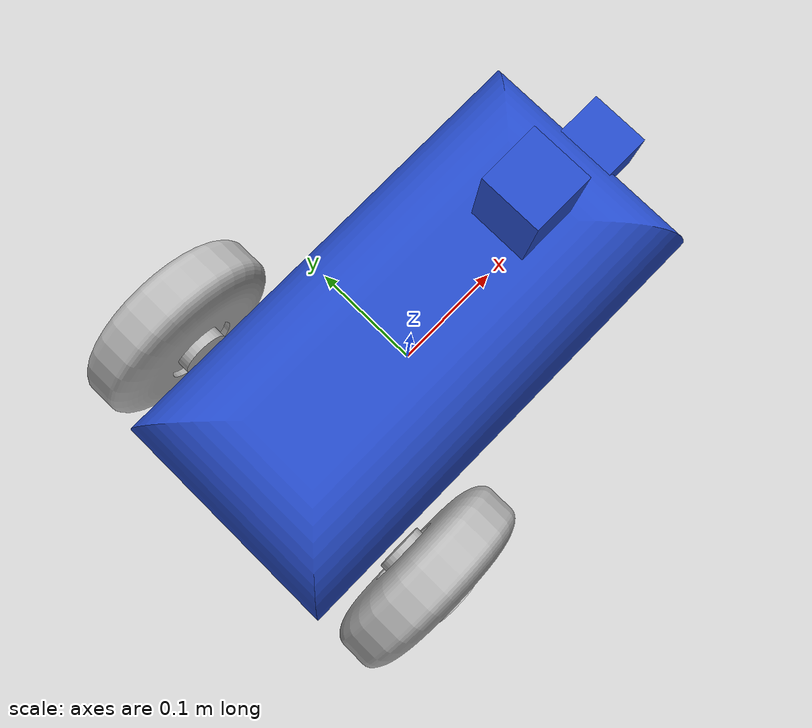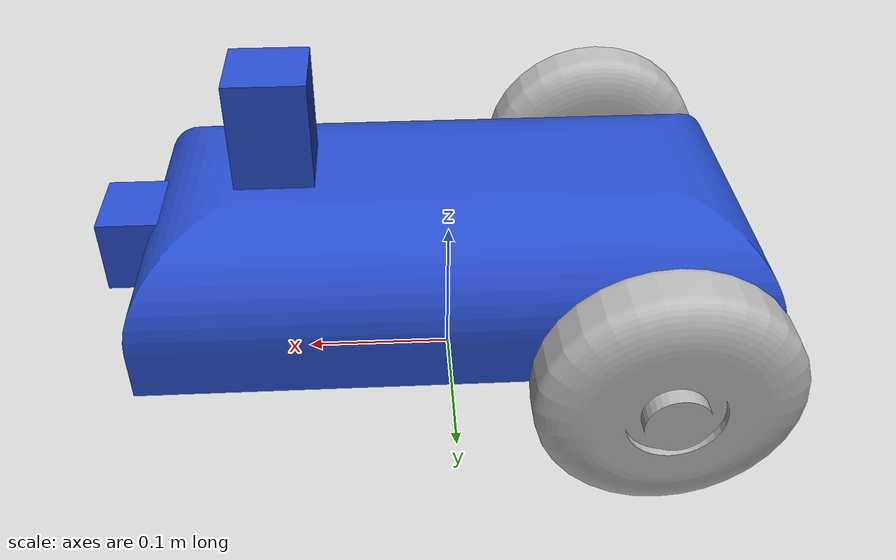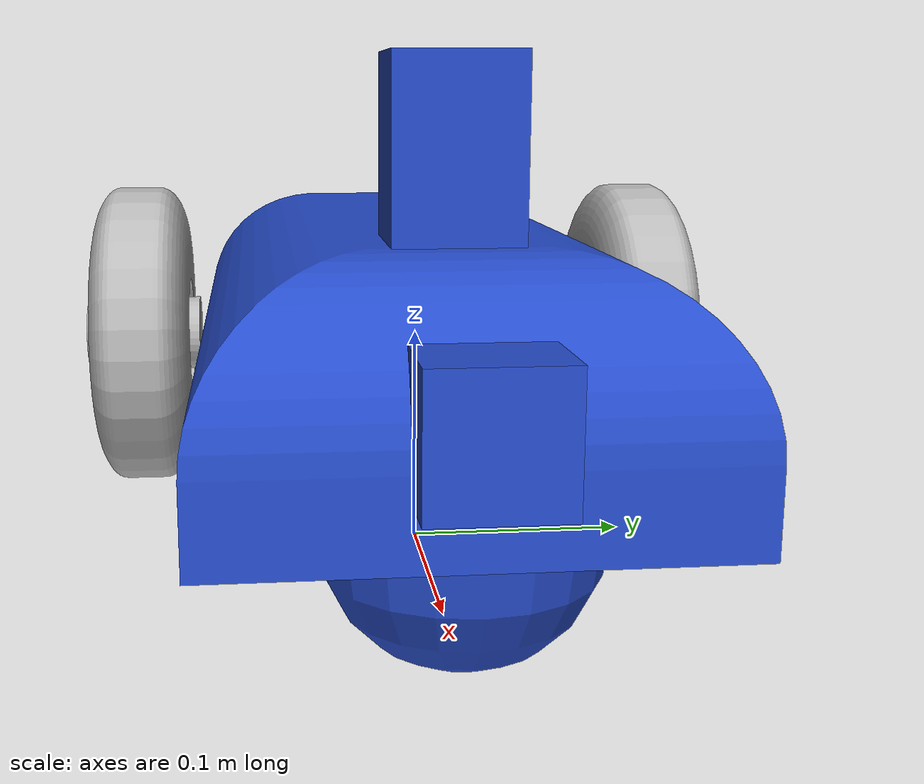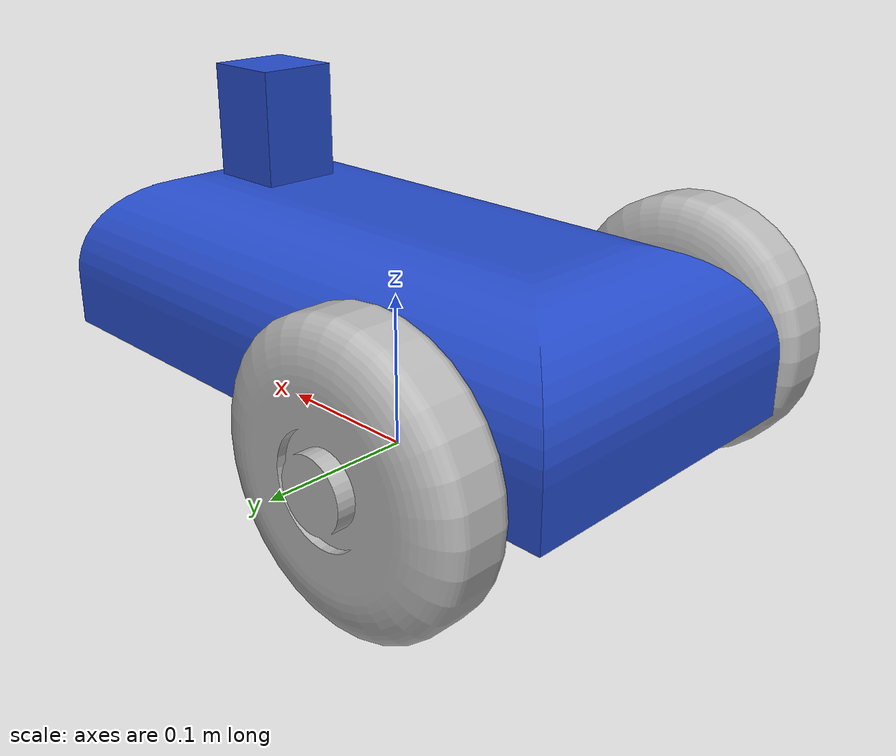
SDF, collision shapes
<sdf version='1.7'>
  <model name='diffbot'>
    <link name='footprint'>
      <inertial>
        <pose>0.043126 0 0.098751 0 -0 0</pose>
        <mass>0.80001</mass>
        <inertia>
          <ixx>0.00884183</ixx>
          <ixy>0</ixy>
          <ixz>0.000509314</ixz>
          <iyy>0.00745657</iyy>
          <iyz>0</iyz>
          <izz>0.0147377</izz>
        </inertia>
      </inertial>
      <collision name='footprint_fixed_joint_lump__base_collision'>
        <pose>0 0 0.105 0 -0 0</pose>
        <geometry>
          <mesh>
            <scale>1 1 1</scale>
            <uri>/home/mkhuthir/ws/install/bots/share/bots/meshes/diffbot/base.stl</uri>
          </mesh>
        </geometry>
        <surface>
          <contact>
            <ode/>
          </contact>
          <friction>
            <ode/>
          </friction>
        </surface>
      </collision>
      <collision name='footprint_fixed_joint_lump__camera_colision_collision_1'>
        <pose>0.2 0 0.105 0 -0 0</pose>
        <geometry>
          <box>
            <size>0.05 0.05 0.05</size>
          </box>
        </geometry>
      </collision>
      <collision name='footprint_fixed_joint_lump__front_caster_collision_2'>
        <pose>0.145 0 0.055 0 -0 0</pose>
        <geometry>
          <sphere>
            <radius>0.055</radius>
          </sphere>
        </geometry>
        <surface>
          <contact>
            <ode/>
          </contact>
          <friction>
            <ode/>
          </friction>
        </surface>
      </collision>
      <collision name='footprint_fixed_joint_lump__hokuyo_colision_collision_3'>
        <pose>0.11 0 0.1903 0 -0 0</pose>
        <geometry>
          <box>
            <size>0.05 0.05 0.0706</size>
          </box>
        </geometry>
      </collision>
      <visual name='footprint_fixed_joint_lump__base_visual'>
        <pose>0 0 0.105 0 -0 0</pose>
        <geometry>
          <mesh>
            <scale>1 1 1</scale>
            <uri>/home/mkhuthir/ws/install/bots/share/bots/meshes/diffbot/base.stl</uri>
          </mesh>
        </geometry>
        <material>
          <script>
            <name>Gazebo/Blue</name>
            <uri>file://media/materials/scripts/gazebo.material</uri>
          </script>
        </material>
      </visual>
      <visual name='footprint_fixed_joint_lump__camera_visual_visual_1'>
        <pose>0.2 0 0.105 0 -0 0</pose>
        <geometry>
          <box>
            <size>0.05 0.05 0.05</size>
          </box>
        </geometry>
        <material>
          <script>
            <name>Gazebo/Green</name>
            <uri>file://media/materials/scripts/gazebo.material</uri>
          </script>
        </material>
      </visual>
      <visual name='footprint_fixed_joint_lump__front_caster_visual_2'>
        <pose>0.145 0 0.055 0 -0 0</pose>
        <geometry>
          <sphere>
            <radius>0.055</radius>
          </sphere>
        </geometry>
        <material>
          <script>
            <name>Gazebo/White</name>
            <uri>file://media/materials/scripts/gazebo.material</uri>
          </script>
        </material>
      </visual>
      <visual name='footprint_fixed_joint_lump__hokuyo_visual_visual_3'>
        <pose>0.11 0 0.1903 0 -0 0</pose>
        <geometry>
          <mesh>
            <scale>1 1 1</scale>
            <uri>/home/mkhuthir/ws/install/bots/share/bots/meshes/diffbot/hokuyo.dae</uri>
          </mesh>
        </geometry>
      </visual>
      <sensor name='camera' type='camera'>
        <update_rate>30</update_rate>
        <camera name='head'>
          <horizontal_fov>1.39626</horizontal_fov>
          <image>
            <width>1280</width>
            <height>720</height>
            <format>R8G8B8</format>
          </image>
          <clip>
            <near>0.02</near>
            <far>300</far>
          </clip>
          <noise>
            <type>gaussian</type>
            <mean>0</mean>
            <stddev>0.007</stddev>
          </noise>
        </camera>
        <plugin name='camera_controller' filename='libgazebo_ros_camera.so'>
          <ros>
            <namespace>diffbot</namespace>
          </ros>
          <alwaysOn>1</alwaysOn>
          <updateRate>0.0</updateRate>
          <cameraName>camera</cameraName>
          <imageTopicName>image_raw</imageTopicName>
          <cameraInfoTopicName>camera_info</cameraInfoTopicName>
          <frameName>camera_optical</frameName>
          <hackBaseline>0.0</hackBaseline>
          <distortionK1>0.0</distortionK1>
          <distortionK2>0.0</distortionK2>
          <distortionK3>0.0</distortionK3>
          <distortionT1>0.0</distortionT1>
          <distortionT2>0.0</distortionT2>
          <CxPrime>0</CxPrime>
          <Cx>0.0</Cx>
          <Cy>0.0</Cy>
          <focalLength>0.0</focalLength>
        </plugin>
        <pose>0.2 0 0.105 0 -0 0</pose>
      </sensor>
      <sensor name='head_hokuyo_sensor' type='ray'>
        <plugin name='hokuyo' filename='libgazebo_ros_ray_sensor.so'>
          <ros>
            <namespace>diffbot</namespace>
          </ros>
          <output_type>sensor_msgs/LaserScan</output_type>
        </plugin>
        <update_rate>30</update_rate>
        <visualize>0</visualize>
        <ray>
          <scan>
            <horizontal>
              <samples>720</samples>
              <resolution>1</resolution>
              <min_angle>-3.14159</min_angle>
              <max_angle>3.14159</max_angle>
            </horizontal>
          </scan>
          <range>
            <min>0.1</min>
            <max>30</max>
            <resolution>0.01</resolution>
          </range>
          <noise>
            <type>gaussian</type>
            <mean>0</mean>
            <stddev>0.01</stddev>
          </noise>
        </ray>
        <pose>0.11 0 0.1903 0 -0 0</pose>
      </sensor>
    </link>
    <joint name='left_wheel_joint' type='revolute'>
      <pose relative_to='footprint'>-0.12 -0.135 0.08 0 -0 0</pose>
      <parent>footprint</parent>
      <child>left_wheel</child>
      <axis>
        <xyz>0 1 0</xyz>
        <limit>
          <effort>30</effort>
          <velocity>5</velocity>
          <lower>-1e+16</lower>
          <upper>1e+16</upper>
        </limit>
        <dynamics>
          <damping>0.2</damping>
          <friction>0</friction>
          <spring_reference>0</spring_reference>
          <spring_stiffness>0</spring_stiffness>
        </dynamics>
      </axis>
    </joint>
    <link name='left_wheel'>
      <pose relative_to='left_wheel_joint'>0 0 0 0 -0 0</pose>
      <inertial>
        <pose>0 0 0 1.5708 -0 0</pose>
        <mass>5</mass>
        <inertia>
          <ixx>0.101042</ixx>
          <ixy>0</ixy>
          <ixz>0</ixz>
          <iyy>0.00266667</iyy>
          <iyz>0</iyz>
          <izz>0.00266667</izz>
        </inertia>
      </inertial>
      <collision name='left_wheel_collision'>
        <pose>0 0 0 1.5708 -0 0</pose>
        <geometry>
          <mesh>
            <scale>1 1 1</scale>
            <uri>/home/mkhuthir/ws/install/bots/share/bots/meshes/diffbot/wheel.dae</uri>
          </mesh>
        </geometry>
      </collision>
      <visual name='left_wheel_visual'>
        <pose>0 0 0 1.5708 -0 0</pose>
        <geometry>
          <mesh>
            <scale>1 1 1</scale>
            <uri>/home/mkhuthir/ws/install/bots/share/bots/meshes/diffbot/wheel.dae</uri>
          </mesh>
        </geometry>
      </visual>
    </link>
    <joint name='right_wheel_joint' type='revolute'>
      <pose relative_to='footprint'>-0.12 0.135 0.08 0 -0 0</pose>
      <parent>footprint</parent>
      <child>right_wheel</child>
      <axis>
        <xyz>0 1 0</xyz>
        <limit>
          <effort>30</effort>
          <velocity>5</velocity>
          <lower>-1e+16</lower>
          <upper>1e+16</upper>
        </limit>
        <dynamics>
          <damping>0.2</damping>
          <friction>0</friction>
          <spring_reference>0</spring_reference>
          <spring_stiffness>0</spring_stiffness>
        </dynamics>
      </axis>
    </joint>
    <link name='right_wheel'>
      <pose relative_to='right_wheel_joint'>0 0 0 0 -0 0</pose>
      <inertial>
        <pose>0 0 0 1.5708 -0 0</pose>
        <mass>5</mass>
        <inertia>
          <ixx>0.101042</ixx>
          <ixy>0</ixy>
          <ixz>0</ixz>
          <iyy>0.00266667</iyy>
          <iyz>0</iyz>
          <izz>0.00266667</izz>
        </inertia>
      </inertial>
      <collision name='right_wheel_collision'>
        <pose>0 0 0 1.5708 -0 0</pose>
        <geometry>
          <mesh>
            <scale>1 1 1</scale>
            <uri>/home/mkhuthir/ws/install/bots/share/bots/meshes/diffbot/wheel.dae</uri>
          </mesh>
        </geometry>
      </collision>
      <visual name='right_wheel_visual'>
        <pose>0 0 0 1.5708 -0 0</pose>
        <geometry>
          <mesh>
            <scale>1 1 1</scale>
            <uri>/home/mkhuthir/ws/install/bots/share/bots/meshes/diffbot/wheel.dae</uri>
          </mesh>
        </geometry>
      </visual>
    </link>
  </model>
</sdf>
